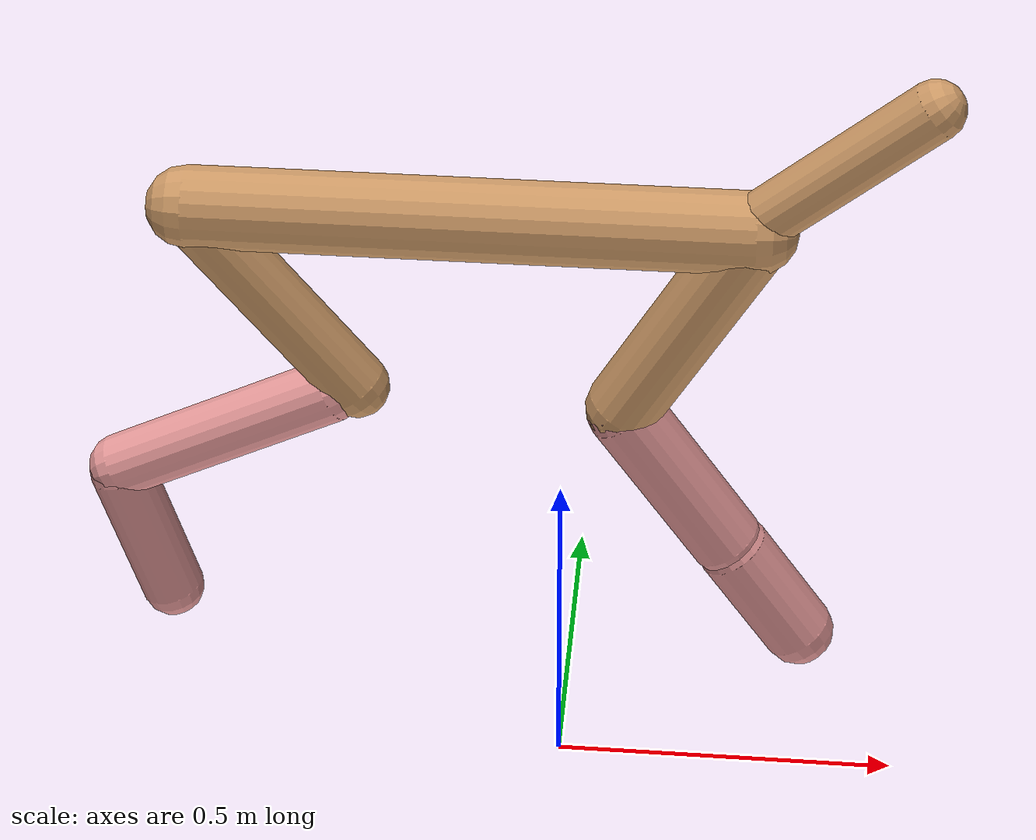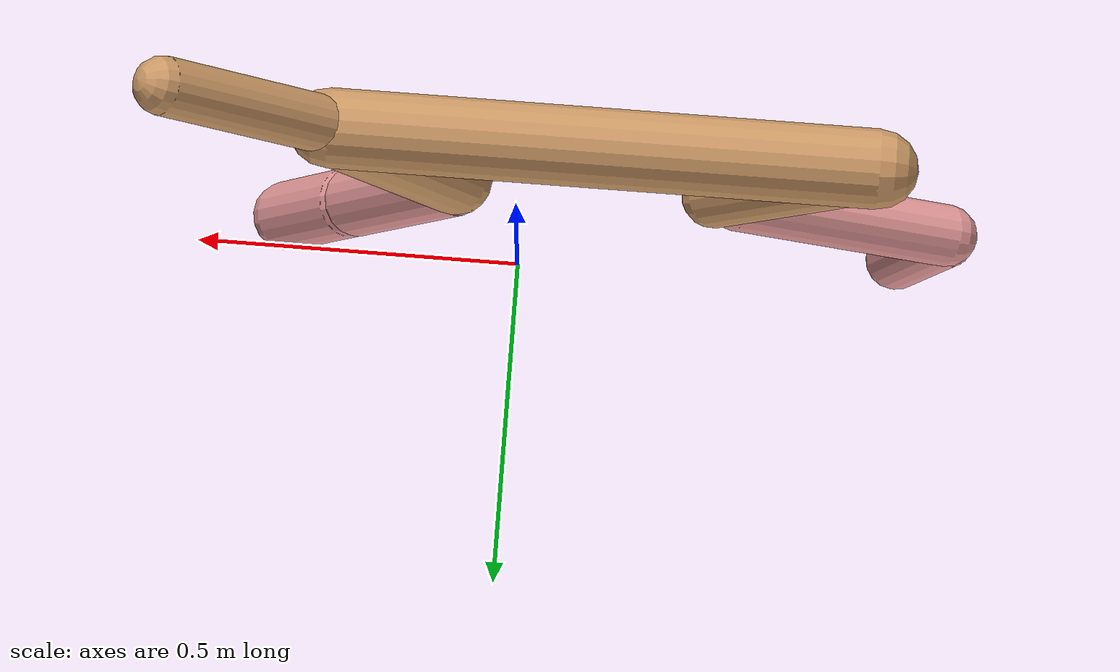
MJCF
<mujoco model="cheetah">
  <compiler angle="radian" coordinate="local" inertiafromgeom="true" settotalmass="14" />
  <default>
    <joint armature=".1" damping=".01" limited="true" solimplimit="0 .8 .03" solreflimit=".02 1" stiffness="8" />
    <geom conaffinity="0" condim="3" contype="1" friction="0.8 .1 .1" rgba="0.8 0.6 .4 1" solimp="0.0 0.8 0.01" solref="0.02 1" />
    <motor ctrllimited="true" ctrlrange="-1 1" />
  </default>
  <size nstack="300000" nuser_geom="1" />
  <option gravity="0 0 -9.81" timestep="0.01" />
  <worldbody>
    <body name="torso" pos="0.0 0.0 0.9471607417705913">
      <joint armature="0" axis="1 0 0" damping="0" limited="false" name="ignorex" pos="0 0 0" stiffness="0" type="slide" />
      <joint armature="0" axis="0 0 1" damping="0" limited="false" name="ignorez" pos="0 0 0" stiffness="0" type="slide" />
      <joint armature="0" axis="0 1 0" damping="0" limited="false" name="ignorey" pos="0 0 0" stiffness="0" type="hinge" />
      <geom fromto="-0.5 0.0 0.0 0.2548732037937025 0.0 0.0" name="torso" size="0.055798643434662745" type="capsule" />
      <geom axisangle="0 1 0 .87" name="head" pos="0.35487320379370246 0.0 0.1" size="0.04050919909998601 0.15" type="capsule" />

      <body name="bthigh" pos="-.5 0 0">
        <joint axis="0 1 0" damping="6" name="bthigh" pos="0 0 0" range="-.52 1.05" stiffness="240" type="hinge" />
        <geom axisangle="0 1 0 -3.8" name="bthigh" pos="0.11407391102546718 0.0 -0.14829608433310734" size="0.04546323083922033 0.16808293034857016" type="capsule" />
        <body name="bshin" pos="0.1881478220509344 0.0 -0.2865921686662147">
          <joint axis="0 1 0" damping="4.5" name="bshin" pos="0 0 0" range="-.785 .785" stiffness="180" type="hinge" />
          <geom axisangle="0 1 0 -2.03" name="bshin" pos="-0.16135793160522588 0.0 -0.08067896580261294" rgba="0.9 0.6 0.6 1" size="0.04546323083922033 0.1738788934640381" type="capsule" />
          <body name="bfoot" pos="-0.32271586321045176 0.0 -0.16135793160522588">
            <joint axis="0 1 0" damping="3" name="bfoot" pos="0 0 0" range="-.4 .785" stiffness="120" type="hinge" />
            <geom axisangle="0 1 0 -.27" name="bfoot" pos="0.03442144042224975 0.0 -0.11129599069860752" rgba="0.9 0.6 0.6 1" size="0.04546323083922033 0.10896410657079722" type="capsule" />
            <inertial mass="10" />
          </body>
        </body>
      </body>
      <body name="fthigh" pos="0.2548732037937025 0.0 0.0">
        <joint axis="0 1 0" damping="4.5" name="fthigh" pos="0 0 0" range="-1.5 0.8" stiffness="180" type="hinge" />
        <geom axisangle="0 1 0 .52" name="fthigh" pos="-0.08732577316376272 0.0 -0.1497013254235932" size="0.05203713509450722 0.16738533332164085" type="capsule" />
        <body name="fshin" pos="-0.17465154632752544 0.0 -0.2994026508471864">
          <joint axis="0 1 0" damping="3" name="fshin" pos="0 0 0" range="-1.2 1.1" stiffness="120" type="hinge" />
          <geom axisangle="0 1 0 -.6" name="fshin" pos="0.08104528204635113 0.0 -0.11221654437187079" rgba="0.9 0.6 0.6 1" size="0.05203713509450722 0.133404852121007" type="capsule" />
          <body name="ffoot" pos="0.16209056409270226 0.0 -0.22443308874374157">
            <joint axis="0 1 0" damping="1.5" name="ffoot" pos="0 0 0" range="-3.1 -0.3" stiffness="60" type="hinge" />
            <geom axisangle="0 1 0 -.6" name="ffoot" pos="0.054786384222906465 0.0 -0.0852232643467434" rgba="0.9 0.6 0.6 1" size="0.05203713509450722 0.08809754385349519" type="capsule" />
            <inertial mass="10" />
          </body>
        </body>
      </body>
    </body>
  </worldbody>
  <actuator>
    <motor gear="120" joint="bthigh" name="bthigh" />
    <motor gear="90" joint="bshin" name="bshin" />
    <motor gear="60" joint="bfoot" name="bfoot" />
    <motor gear="120" joint="fthigh" name="fthigh" />
    <motor gear="60" joint="fshin" name="fshin" />
    <motor gear="30" joint="ffoot" name="ffoot" />
  </actuator>
</mujoco>
